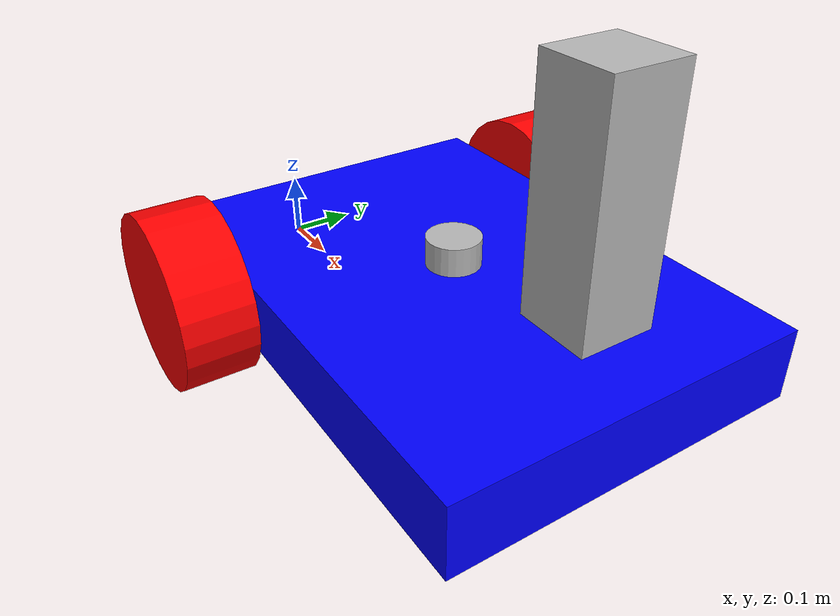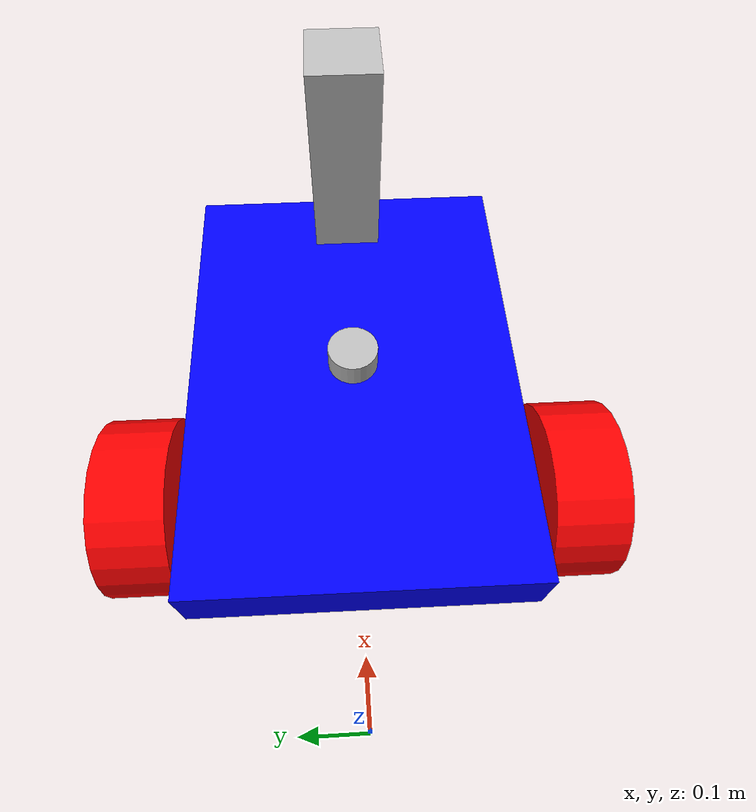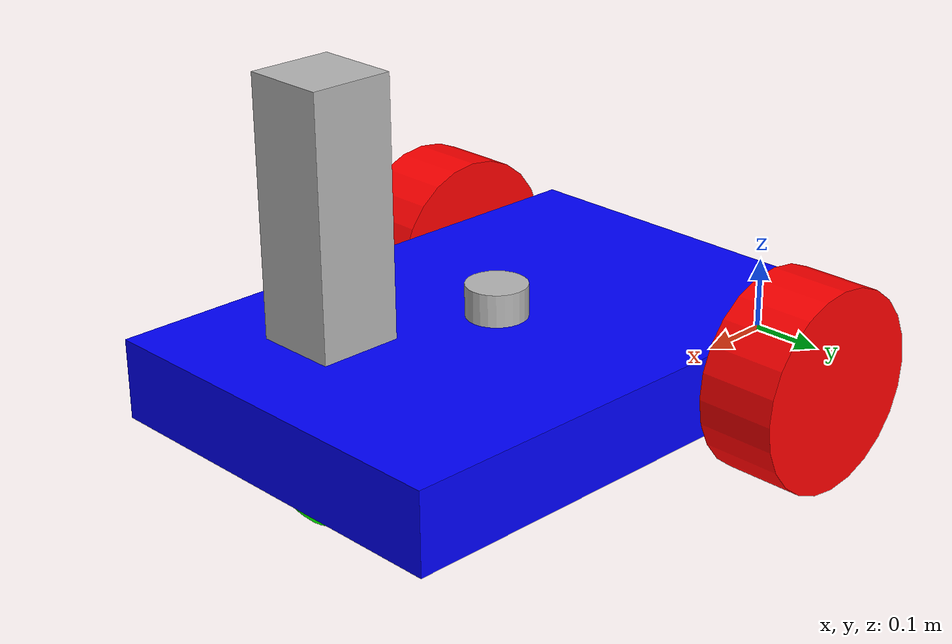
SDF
<sdf version="1.7">
 <world name="world_demo">
  <physics name="1ms" type="ignored">
   <max_step_size>0.01</max_step_size>
   <real_time_factor>1</real_time_factor>
  </physics>
  <plugin name="ignition::gazebo::systems::Physics" filename="libignition-gazebo-physics-system.so"/>
  <plugin name="ignition::gazebo::systems::UserCommands" filename="libignition-gazebo-user-commands-system.so"/>
  <plugin name="ignition::gazebo::systems::SceneBroadcaster" filename="libignition-gazebo-scene-broadcaster-system.so"/>
  <plugin name="ignition::gazebo::systems::Imu" filename="ignition-gazebo-imu-system"/>
  <plugin name="ignition::gazebo::systems::Sensors" filename="ignition-gazebo-sensors-system">
   <render_engine>ogre2</render_engine>
  </plugin>
  <scene>
   <ambient>1 1 1 1</ambient>
   <background>0.3 0.7 0.9 1</background>
   <shadows>0</shadows>
   <grid>1</grid>
  </scene>
  <model name="ground_plane">
   <static>1</static>
   <link name="link">
    <collision name="collision">
     <geometry><plane><normal>0 0 1</normal><size>1 1</size></plane></geometry>
    </collision>
   </link>
  </model>
  <model name="depot_collision">
   <static>1</static>
   <pose>7.19009 1.09982 0 0 0 0</pose>
   <link name="collision_link">
    <collision name="wall1">
     <pose>0 -7.6129 4.5 0 0 0</pose>
     <geometry><box><size>30.167 0.08 9</size></box></geometry>
    </collision>
    <collision name="wall2">
     <pose>0 7.2875 4.5 0 0 0</pose>
     <geometry><box><size>30.167 0.08 9</size></box></geometry>
    </collision>
    <collision name="wall3">
     <pose>-15 0 4.5 0 0 0</pose>
     <geometry><box><size>0.08 15.360 9</size></box></geometry>
    </collision>
    <collision name="wall4">
     <pose>15 0 4.5 0 0 0</pose>
     <geometry><box><size>0.08 15.360 9</size></box></geometry>
    </collision>
    <collision name="boxes1">
     <pose>0.22268 -4.7268 0.68506 0 0 0</pose>
     <geometry><box><size>1.288 1.422 1.288</size></box></geometry>
    </collision>
    <collision name="boxes2">
     <pose>3.1727 -4.7268 0.68506 0 0 0</pose>
     <geometry><box><size>1.288 1.422 1.288</size></box></geometry>
    </collision>
    <collision name="boxes3">
     <pose>5.95268 -4.7268 0.68506 0 0 0</pose>
     <geometry><box><size>1.288 1.422 1.288</size></box></geometry>
    </collision>
    <collision name="boxes4">
     <pose>8.55887 -4.7268 0.68506 0 0 0</pose>
     <geometry><box><size>1.288 1.422 1.288</size></box></geometry>
    </collision>
    <collision name="boxes5">
     <pose>11.326 -4.7268 0.68506 0 0 0</pose>
     <geometry><box><size>1.288 1.422 1.288</size></box></geometry>
    </collision>
    <collision name="boxes6">
     <pose>0.22268 -2.37448 0.68506 0 0 0</pose>
     <geometry><box><size>1.288 1.422 1.288</size></box></geometry>
    </collision>
    <collision name="boxes7">
     <pose>3.1727 -2.37448 0.68506 0 0 0</pose>
     <geometry><box><size>1.288 1.422 1.288</size></box></geometry>
    </collision>
    <collision name="boxes8">
     <pose>5.95268 -2.37448 0.68506 0 0 0</pose>
     <geometry><box><size>1.288 1.422 1.288</size></box></geometry>
    </collision>
    <collision name="boxes9">
     <pose>8.55887 -2.37448 0.68506 0 0 0</pose>
     <geometry><box><size>1.288 1.422 1.288</size></box></geometry>
    </collision>
    <collision name="boxes10">
     <pose>11.326 -2.37448 0.68506 0 0 0</pose>
     <geometry><box><size>1.288 1.422 1.288</size></box></geometry>
    </collision>
    <collision name="boxes11">
     <pose>-1.2268 4.1557 0.68506 0 0 -1.02799893</pose>
     <geometry><box><size>1.288 1.422 1.288</size></box></geometry>
    </collision>
    <collision name="pilar1">
     <pose>-7.5402 3.6151 1 0 0 0</pose>
     <geometry><box><size>0.465 0.465 2</size></box></geometry>
    </collision>
    <collision name="pilar2">
     <pose>7.4575 3.6151 1 0 0 0</pose>
     <geometry><box><size>0.465 0.465 2</size></box></geometry>
    </collision>
    <collision name="pilar3">
     <pose>-7.5402 -3.8857 1 0 0 0</pose>
     <geometry><box><size>0.465 0.465 2</size></box></geometry>
    </collision>
    <collision name="pilar4">
     <pose>7.4575 -3.8857 1 0 0 0</pose>
     <geometry><box><size>0.465 0.465 2</size></box></geometry>
    </collision>
    <collision name="pallet_mover1">
     <pose>-0.6144 -2.389 0.41838 0 0 0</pose>
     <geometry><box><size>0.363 0.440 0.719</size></box></geometry>
    </collision>
    <collision name="pallet_mover2">
     <pose>-1.6004 4.8225 0.41838 0 0 0</pose>
     <geometry><box><size>0.363 0.244 0.719</size></box></geometry>
    </collision>
    <collision name="stairs">
     <pose>13.018 3.1652 0.25 0 0 0</pose>
     <geometry><box><size>1.299 0.6 0.5</size></box></geometry>
    </collision>
    <collision name="shelfs1">
     <pose>1.4662 -0.017559 0.5 0 0 0</pose>
     <geometry><cylinder><radius>0.03</radius><length>1</length></cylinder></geometry>
    </collision>
    <collision name="shelfs2">
     <pose>2.6483 -0.017559 0.5 0 0 0</pose>
     <geometry><cylinder><radius>0.03</radius><length>1</length></cylinder></geometry>
    </collision>
    <collision name="shelfs3">
     <pose>5.3247 -0.017559 0.5 0 0 0</pose>
     <geometry><cylinder><radius>0.03</radius><length>1</length></cylinder></geometry>
    </collision>
    <collision name="shelfs4">
     <pose>6.5063 -0.017559 0.5 0 0 0</pose>
     <geometry><cylinder><radius>0.03</radius><length>1</length></cylinder></geometry>
    </collision>
    <collision name="shelfs5">
     <pose>9.0758 -0.017559 0.5 0 0 0</pose>
     <geometry><cylinder><radius>0.03</radius><length>1</length></cylinder></geometry>
    </collision>
    <collision name="shelfs6">
     <pose>10.258 -0.017559 0.5 0 0 0</pose>
     <geometry><cylinder><radius>0.03</radius><length>1</length></cylinder></geometry>
    </collision>
    <collision name="shelfs7">
     <pose>1.4662 2.5664 0.5 0 0 0</pose>
     <geometry><cylinder><radius>0.03</radius><length>1</length></cylinder></geometry>
    </collision>
    <collision name="shelfs8">
     <pose>2.6483 2.5664 0.5 0 0 0</pose>
     <geometry><cylinder><radius>0.03</radius><length>1</length></cylinder></geometry>
    </collision>
    <collision name="shelfs9">
     <pose>5.3247 2.5664 0.5 0 0 0</pose>
     <geometry><cylinder><radius>0.03</radius><length>1</length></cylinder></geometry>
    </collision>
    <collision name="shelfs10">
     <pose>6.5063 2.5664 0.5 0 0 0</pose>
     <geometry><cylinder><radius>0.03</radius><length>1</length></cylinder></geometry>
    </collision>
    <collision name="shelfs11">
     <pose>9.0758 2.5664 0.5 0 0 0</pose>
     <geometry><cylinder><radius>0.03</radius><length>1</length></cylinder></geometry>
    </collision>
    <collision name="shelfs12">
     <pose>10.258 2.5664 0.5 0 0 0</pose>
     <geometry><cylinder><radius>0.03</radius><length>1</length></cylinder></geometry>
    </collision>
    <collision name="shelfs13">
     <pose>1.4662 5.1497 0.5 0 0 0</pose>
     <geometry><cylinder><radius>0.03</radius><length>1</length></cylinder></geometry>
    </collision>
    <collision name="shelfs14">
     <pose>2.6483 5.1497 0.5 0 0 0</pose>
     <geometry><cylinder><radius>0.03</radius><length>1</length></cylinder></geometry>
    </collision>
    <collision name="shelfs15">
     <pose>5.3247 5.1497 0.5 0 0 0</pose>
     <geometry><cylinder><radius>0.03</radius><length>1</length></cylinder></geometry>
    </collision>
    <collision name="shelfs16">
     <pose>6.5063 5.1497 0.5 0 0 0</pose>
     <geometry><cylinder><radius>0.03</radius><length>1</length></cylinder></geometry>
    </collision>
    <collision name="shelfs17">
     <pose>9.0758 5.1497 0.5 0 0 0</pose>
     <geometry><cylinder><radius>0.03</radius><length>1</length></cylinder></geometry>
    </collision>
    <collision name="shelfs18">
     <pose>10.258 5.1497 0.5 0 0 0</pose>
     <geometry><cylinder><radius>0.03</radius><length>1</length></cylinder></geometry>
    </collision>
   </link>
  </model>
  <model name="the_bot" canonical_link="chassis">
   <pose relative_to="world">0 0 0 0 0 0</pose>
   <link name="chassis">
    <pose relative_to="__model__">0.5 0 0.125 0 0 0</pose>
    <inertial>
     <mass>1.14395</mass>
     <inertia>
      <ixx>0.126164</ixx>
      <ixy>0</ixy>
      <ixz>0</ixz>
      <iyy>0.416519</iyy>
      <iyz>0</iyz>
      <izz>0.481014</izz>
     </inertia>
    </inertial>
    <visual name="visual">
     <geometry><box><size>0.7 0.5 0.1</size></box></geometry>
     <material>
      <ambient>0.0 0.0 1.0 1</ambient>
      <diffuse>0.0 0.0 1.0 1</diffuse>
      <specular>0.0 0.0 1.0 1</specular>
     </material>
    </visual>
    <collision name="collision"><geometry><box><size>0.7 1.5 0.2</size></box></geometry></collision>
    <sensor name="imu_sensor" type="imu">
     <always_on>1</always_on>
     <update_rate>1</update_rate>
     <visualize>true</visualize>
     <topic>imu</topic>
    </sensor>
   </link>
   <link name="lidar_link">
    <pose relative_to="chassis">0 0 0.07 0 0 0</pose>
    <intertial>
     <mass>0.2</mass>
     <inertia><ixx>0.000166667</ixx><iyy>0.000166667</iyy><izz>0.000166667</izz></inertia>
    </intertial>
    <collision name="collision">
     <geometry><cylinder><radius>0.038</radius><length>0.041</length></cylinder></geometry>
    </collision>
    <visual name="visual">
     <geometry><cylinder><radius>0.038</radius><length>0.041</length></cylinder></geometry>
    </visual>
    <sensor name="gpu_lidar" type="gpu_lidar">
     <pose relative_to="lidar_frame">0 0 0 0 0 0</pose>
     <topic>scan</topic>
     <update_rate>10</update_rate>
     <ray>
      <scan>
       <horizontal>
        <samples>640</samples>
        <resolution>1</resolution>
        <min_angle>-1.396263</min_angle>
        <max_angle>1.396263</max_angle>
       </horizontal>
       <vertical>
        <samples>1</samples>
        <resolution>0.01</resolution>
        <min_angle>0</min_angle>
        <max_angle>0</max_angle>
       </vertical>
      </scan>
      <range><min>0.08</min><max>10.0</max><resolution>0.01</resolution></range>
     </ray>
     <alwaysOn>1</alwaysOn>
     <visualize>true</visualize>
    </sensor>
   </link>
   <link name="camera_link">
    <pose relative_to="chassis">0.25 0 0.25 0 0 0</pose>
    <inertial>
     <mass>0.1</mass>
     <inertia><ixx>0.000166667</ixx><iyy>0.000166667</iyy><izz>0.000166667</izz></inertia>
    </inertial>
    <collision name="collision"><geometry><box><size>0.1 0.1 0.3</size></box></geometry></collision>
    <visual name="visual"><geometry><box><size>0.1 0.1 0.3</size></box></geometry></visual>
    <sensor name="camera" type="camera">
     <camera>
      <horizontal_fov>1.047</horizontal_fov>
      <image><width>800</width><height>600</height></image>
      <clip><near>0.1</near><far>100</far></clip>
     </camera>
     <always_on>1</always_on>
     <update_rate>30</update_rate>
     <visualize>true</visualize>
     <topic>camera</topic>
    </sensor>
   </link>
   <link name="left_wheel">
    <pose relative_to="chassis">-0.2 0.3 0 -1.5707 0 0</pose>
    <inertial>
     <mass>2</mass>
     <inertia><ixx>0.145833</ixx><ixy>0</ixy><ixz>0</ixz><iyy>0.145833</iyy><iyz>0</iyz><izz>0.125</izz></inertia>
    </inertial>
    <visual name="visual">
     <geometry><cylinder><radius>0.125</radius><length>0.1</length></cylinder></geometry>
     <material>
      <ambient>1.0 0.0 0.0 1</ambient>
      <diffuse>1.0 0.0 0.0 1</diffuse>
      <specular>1.0 0.0 0.0 1</specular>
     </material>
    </visual>
    <collision name="collision">
     <geometry><cylinder><radius>0.125</radius><length>0.1</length></cylinder></geometry>
    </collision>
   </link>
   <link name="right_wheel">
    <pose relative_to="chassis">-0.2 -0.3 0 -1.5707 0 0</pose>
    <inertial>
     <mass>1</mass>
     <inertia><ixx>0.145833</ixx><ixy>0</ixy><ixz>0</ixz><iyy>0.145833</iyy><iyz>0</iyz><izz>0.125</izz></inertia>
    </inertial>
    <visual name="visual">
     <geometry><cylinder><radius>0.125</radius><length>0.1</length></cylinder></geometry>
     <material>
      <ambient>1.0 0.0 0.0 1</ambient>
      <diffuse>1.0 0.0 0.0 1</diffuse>
      <specular>1.0 0.0 0.0 1</specular>
     </material>
    </visual>
    <collision name="collision">
     <geometry><cylinder><radius>0.125</radius><length>0.1</length></cylinder></geometry>
    </collision>
   </link>
   <frame name="caster_frame" attached_to="chassis"><pose>0.25 0 -0.0625 0 0 0</pose></frame>
   <link name="caster">
    <pose relative_to="caster_frame"/>
    <inertial>
     <mass>1</mass>
     <inertia><ixx>0.1</ixx><ixy>0</ixy><ixz>0</ixz><iyy>0.1</iyy><iyz>0</iyz><izz>0.1</izz></inertia>
    </inertial>
    <visual name="visual">
     <geometry><sphere><radius>0.0625</radius></sphere></geometry>
     <material>
      <ambient>0.0 1 0.0 1</ambient>
      <diffuse>0.0 1 0.0 1</diffuse>
      <specular>0.0 1 0.0 1</specular>
     </material>
    </visual>
    <collision name="collision"><geometry><sphere><radius>0.0625</radius></sphere></geometry></collision>
   </link>
   <joint name="left_wheel_joint" type="revolute">
    <pose relative_to="left_wheel"/>
    <parent>chassis</parent>
    <child>left_wheel</child>
    <axis>
     <xyz expressed_in="__model__">0 1 0</xyz>
     <limit><lower>-1.79769e+308</lower><upper>1.79769e+308</upper></limit>
    </axis>
   </joint>
   <joint name="right_wheel_joint" type="revolute">
    <pose relative_to="right_wheel"/>
    <parent>chassis</parent>
    <child>right_wheel</child>
    <axis>
     <xyz expressed_in="__model__">0 1 0</xyz>
     <limit><lower>-1.79769e+308</lower><upper>1.79769e+308</upper></limit>
    </axis>
   </joint>
   <joint name="lidar_joint" type="fixed">
    <pose relative_to="lidar_link"/>
    <parent>chassis</parent>
    <child>lidar_link</child>
   </joint>
   <joint name="camera_joint" type="fixed">
    <pose relative_to="camera_link"/>
    <parent>chassis</parent>
    <child>camera_link</child>
   </joint>
   <joint name="caster_wheel" type="ball"><parent>chassis</parent><child>caster</child></joint>
   <plugin filename="libignition-gazebo-diff-drive-system.so" name="ignition::gazebo::systems::DiffDrive">
    <left_joint>left_wheel_joint</left_joint>
    <right_joint>right_wheel_joint</right_joint>
    <wheel_separation>1.2</wheel_separation>
    <wheel_radius>0.4</wheel_radius>
    <odom_publish_frequency>1</odom_publish_frequency>
    <topic>cmd_vel</topic>
    <odom_topic>odom</odom_topic>
    <tf_topic>bot_tf</tf_topic>
   </plugin>
  </model>
  <plugin filename="libignition-gazebo-triggered-publisher-system.so" name="ignition::gazebo::systems::TriggeredPublisher">
   <input type="ignition.msgs.Int32" topic="/keyboard/keypress"><match field="data">16777235</match></input>
   <output type="ignition.msgs.Twist" topic="/cmd_vel">linear: {x: 0.5}, angular: {z: 0.0}</output>
  </plugin>
  <plugin filename="libignition-gazebo-triggered-publisher-system.so" name="ignition::gazebo::systems::TriggeredPublisher">
   <input type="ignition.msgs.Int32" topic="/keyboard/keypress"><match field="data">16777237</match></input>
   <output type="ignition.msgs.Twist" topic="/cmd_vel">linear: {x: -0.5}, angular: {z: 0.0}</output>
  </plugin>
  <plugin filename="libignition-gazebo-triggered-publisher-system.so" name="ignition::gazebo::systems::TriggeredPublisher">
   <input type="ignition.msgs.Int32" topic="/keyboard/keypress"><match field="data">16777236</match></input>
   <output type="ignition.msgs.Twist" topic="/cmd_vel">linear: {x: 0.0}, angular: {z: -0.5}</output>
  </plugin>
  <plugin filename="libignition-gazebo-triggered-publisher-system.so" name="ignition::gazebo::systems::TriggeredPublisher">
   <input type="ignition.msgs.Int32" topic="/keyboard/keypress"><match field="data">16777234</match></input>
   <output type="ignition.msgs.Twist" topic="/cmd_vel">linear: {x: 0.0}, angular: {z: 0.5}</output>
  </plugin>
 </world>
</sdf>
